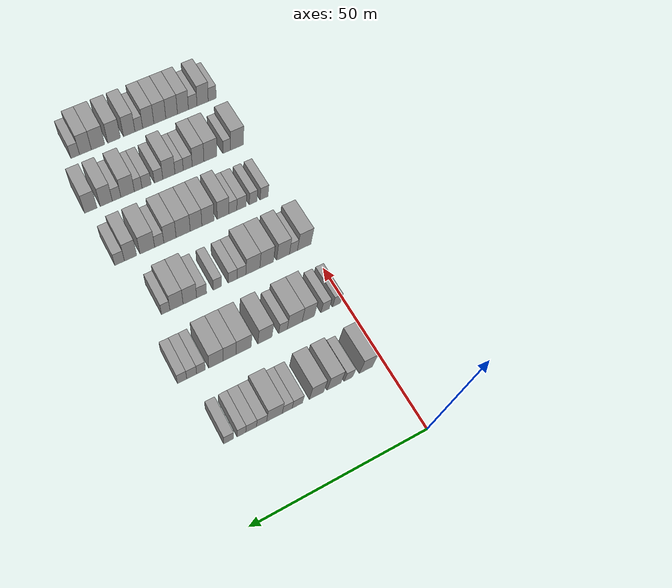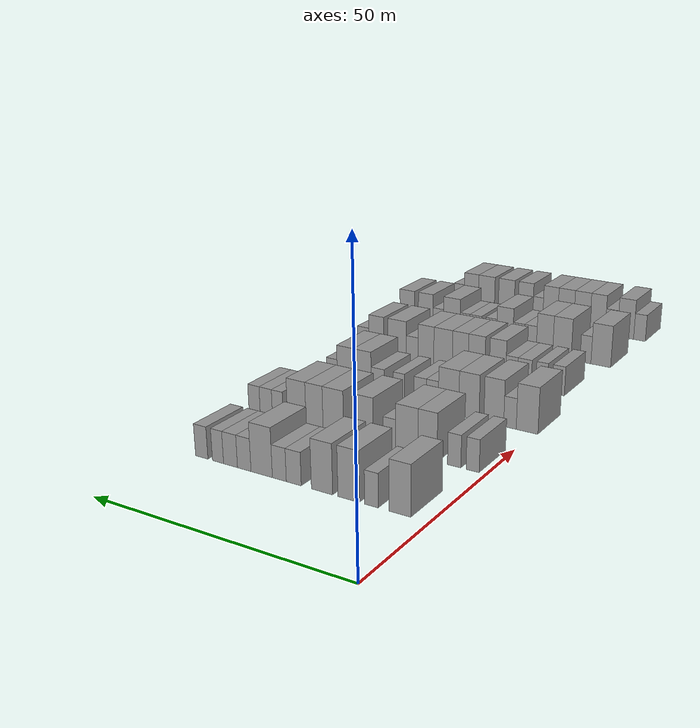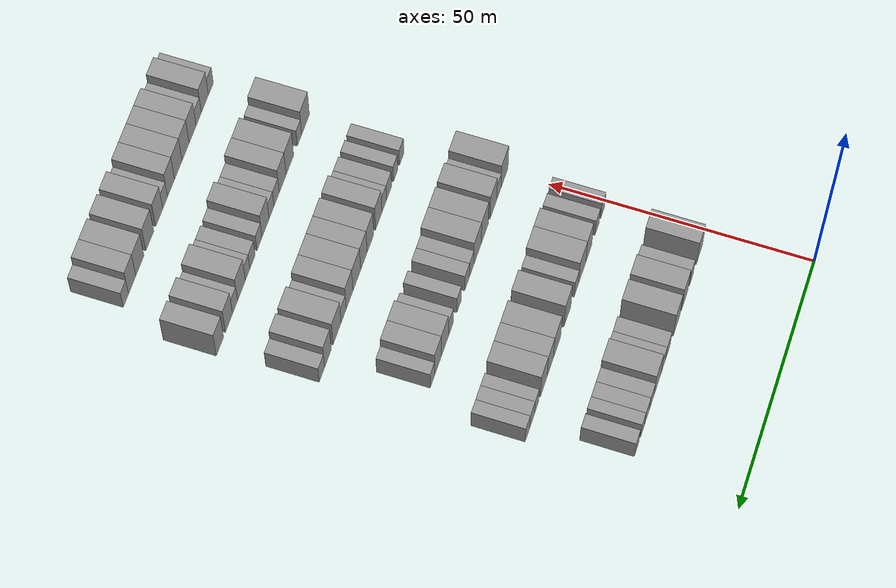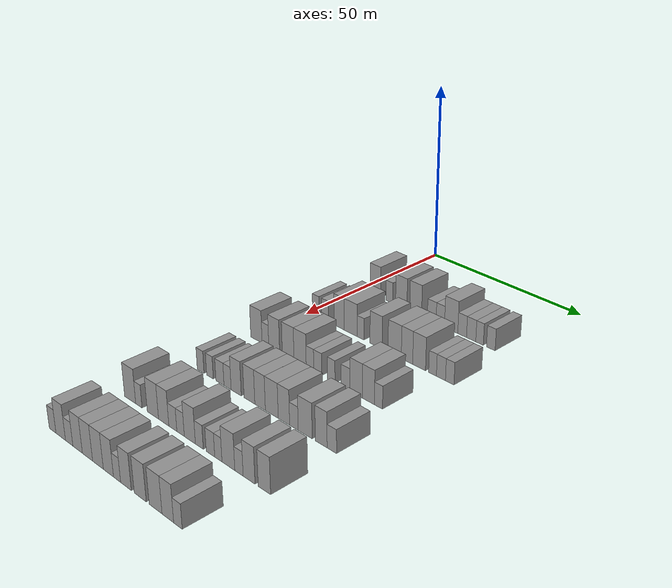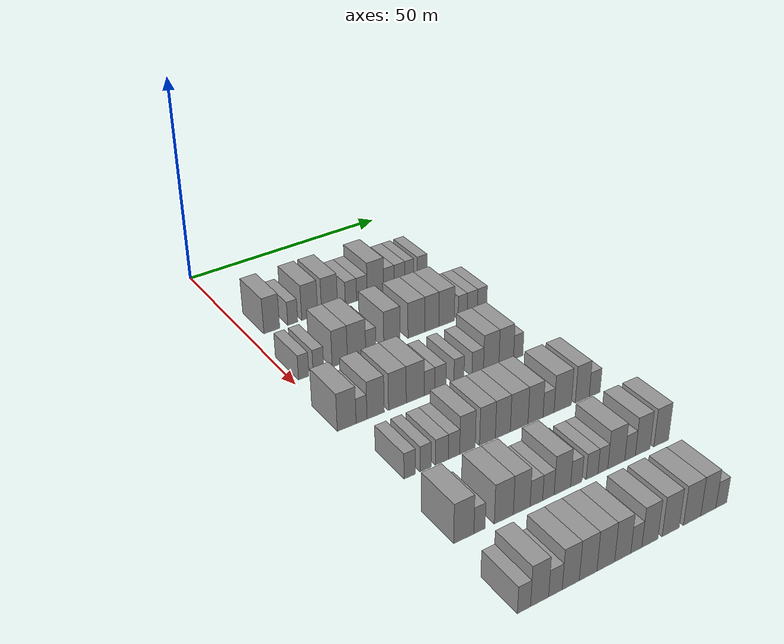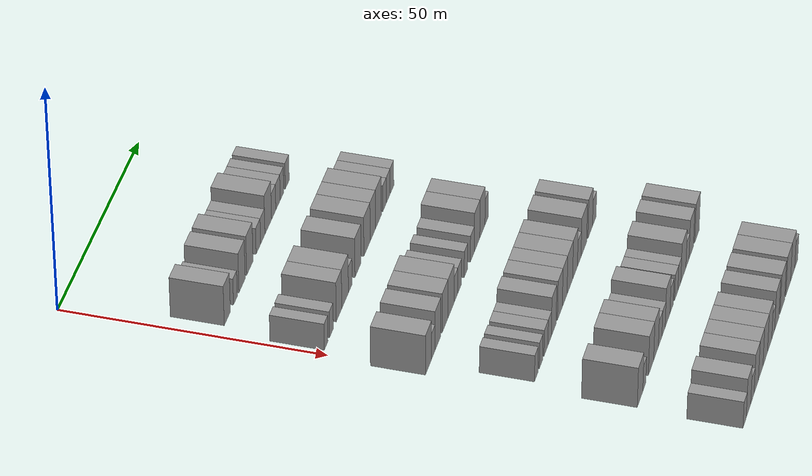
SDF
<sdf version="1.6">
 <world name="default">
  <model name="building_91">
   <static>1</static>
   <pose>25.0000 5.2806 0 0.000000 0.000000 0.000000</pose>
   <link name="link">
    <pose>0 0 4.50 0 0 0</pose>
    <collision name="collision"><geometry><box><size>10.0000 3.9030 9.0000</size></box></geometry></collision>
    <visual name="visual">
     <cast_shadows>0</cast_shadows>
     <geometry><box><size>10.0000 3.9030 9.0000</size></box></geometry>
     <material>
      <script>
       <uri>model://grey_wall/materials/scripts</uri>
       <uri>model://grey_wall/materials/textures</uri>
       <name>vrc/grey_wall</name>
      </script>
     </material>
    </visual>
   </link>
  </model>
  <model name="building_92">
   <static>1</static>
   <pose>25.0000 10.4878 0 0.000000 0.000000 0.000000</pose>
   <link name="link">
    <pose>0 0 3.00 0 0 0</pose>
    <collision name="collision"><geometry><box><size>10.0000 2.5113 6.0000</size></box></geometry></collision>
    <visual name="visual">
     <cast_shadows>0</cast_shadows>
     <geometry><box><size>10.0000 2.5113 6.0000</size></box></geometry>
     <material>
      <script>
       <uri>model://grey_wall/materials/scripts</uri>
       <uri>model://grey_wall/materials/textures</uri>
       <name>vrc/grey_wall</name>
      </script>
     </material>
    </visual>
   </link>
  </model>
  <model name="building_93">
   <static>1</static>
   <pose>25.0000 14.7688 0 0.000000 0.000000 0.000000</pose>
   <link name="link">
    <pose>0 0 4.50 0 0 0</pose>
    <collision name="collision"><geometry><box><size>10.0000 4.0507 9.0000</size></box></geometry></collision>
    <visual name="visual">
     <cast_shadows>0</cast_shadows>
     <geometry><box><size>10.0000 4.0507 9.0000</size></box></geometry>
     <material>
      <script>
       <uri>model://grey_wall/materials/scripts</uri>
       <uri>model://grey_wall/materials/textures</uri>
       <name>vrc/grey_wall</name>
      </script>
     </material>
    </visual>
   </link>
  </model>
  <model name="building_94">
   <static>1</static>
   <pose>25.0000 19.8665 0 0.000000 0.000000 0.000000</pose>
   <link name="link">
    <pose>0 0 4.50 0 0 0</pose>
    <collision name="collision"><geometry><box><size>10.0000 4.1447 9.0000</size></box></geometry></collision>
    <visual name="visual">
     <cast_shadows>0</cast_shadows>
     <geometry><box><size>10.0000 4.1447 9.0000</size></box></geometry>
     <material>
      <script>
       <uri>model://grey_wall/materials/scripts</uri>
       <uri>model://grey_wall/materials/textures</uri>
       <name>vrc/grey_wall</name>
      </script>
     </material>
    </visual>
   </link>
  </model>
  <model name="building_95">
   <static>1</static>
   <pose>25.0000 25.4383 0 0.000000 0.000000 0.000000</pose>
   <link name="link">
    <pose>0 0 3.00 0 0 0</pose>
    <collision name="collision"><geometry><box><size>10.0000 2.9990 6.0000</size></box></geometry></collision>
    <visual name="visual">
     <cast_shadows>0</cast_shadows>
     <geometry><box><size>10.0000 2.9990 6.0000</size></box></geometry>
     <material>
      <script>
       <uri>model://grey_wall/materials/scripts</uri>
       <uri>model://grey_wall/materials/textures</uri>
       <name>vrc/grey_wall</name>
      </script>
     </material>
    </visual>
   </link>
  </model>
  <model name="building_96">
   <static>1</static>
   <pose>25.0000 28.3533 0 0.000000 0.000000 0.000000</pose>
   <link name="link">
    <pose>0 0 3.00 0 0 0</pose>
    <collision name="collision"><geometry><box><size>10.0000 2.8310 6.0000</size></box></geometry></collision>
    <visual name="visual">
     <cast_shadows>0</cast_shadows>
     <geometry><box><size>10.0000 2.8310 6.0000</size></box></geometry>
     <material>
      <script>
       <uri>model://grey_wall/materials/scripts</uri>
       <uri>model://grey_wall/materials/textures</uri>
       <name>vrc/grey_wall</name>
      </script>
     </material>
    </visual>
   </link>
  </model>
  <model name="building_97">
   <static>1</static>
   <pose>25.0000 31.9788 0 0.000000 0.000000 0.000000</pose>
   <link name="link">
    <pose>0 0 4.50 0 0 0</pose>
    <collision name="collision"><geometry><box><size>10.0000 4.4200 9.0000</size></box></geometry></collision>
    <visual name="visual">
     <cast_shadows>0</cast_shadows>
     <geometry><box><size>10.0000 4.4200 9.0000</size></box></geometry>
     <material>
      <script>
       <uri>model://grey_wall/materials/scripts</uri>
       <uri>model://grey_wall/materials/textures</uri>
       <name>vrc/grey_wall</name>
      </script>
     </material>
    </visual>
   </link>
  </model>
  <model name="building_98">
   <static>1</static>
   <pose>25.0000 35.6178 0 0.000000 0.000000 0.000000</pose>
   <link name="link">
    <pose>0 0 3.00 0 0 0</pose>
    <collision name="collision"><geometry><box><size>10.0000 2.8580 6.0000</size></box></geometry></collision>
    <visual name="visual">
     <cast_shadows>0</cast_shadows>
     <geometry><box><size>10.0000 2.8580 6.0000</size></box></geometry>
     <material>
      <script>
       <uri>model://grey_wall/materials/scripts</uri>
       <uri>model://grey_wall/materials/textures</uri>
       <name>vrc/grey_wall</name>
      </script>
     </material>
    </visual>
   </link>
  </model>
  <model name="building_99">
   <static>1</static>
   <pose>25.0000 38.5380 0 0.000000 0.000000 0.000000</pose>
   <link name="link">
    <pose>0 0 3.00 0 0 0</pose>
    <collision name="collision"><geometry><box><size>10.0000 2.9825 6.0000</size></box></geometry></collision>
    <visual name="visual">
     <cast_shadows>0</cast_shadows>
     <geometry><box><size>10.0000 2.9825 6.0000</size></box></geometry>
     <material>
      <script>
       <uri>model://grey_wall/materials/scripts</uri>
       <uri>model://grey_wall/materials/textures</uri>
       <name>vrc/grey_wall</name>
      </script>
     </material>
    </visual>
   </link>
  </model>
  <model name="building_100">
   <static>1</static>
   <pose>25.0000 41.2293 0 0.000000 0.000000 0.000000</pose>
   <link name="link">
    <pose>0 0 3.00 0 0 0</pose>
    <collision name="collision"><geometry><box><size>10.0000 2.4000 6.0000</size></box></geometry></collision>
    <visual name="visual">
     <cast_shadows>0</cast_shadows>
     <geometry><box><size>10.0000 2.4000 6.0000</size></box></geometry>
     <material>
      <script>
       <uri>model://grey_wall/materials/scripts</uri>
       <uri>model://grey_wall/materials/textures</uri>
       <name>vrc/grey_wall</name>
      </script>
     </material>
    </visual>
   </link>
  </model>
  <model name="building_101">
   <static>1</static>
   <pose>25.0000 44.7892 0 0.000000 0.000000 0.000000</pose>
   <link name="link">
    <pose>0 0 3.00 0 0 0</pose>
    <collision name="collision"><geometry><box><size>10.0000 2.7198 6.0000</size></box></geometry></collision>
    <visual name="visual">
     <cast_shadows>0</cast_shadows>
     <geometry><box><size>10.0000 2.7198 6.0000</size></box></geometry>
     <material>
      <script>
       <uri>model://grey_wall/materials/scripts</uri>
       <uri>model://grey_wall/materials/textures</uri>
       <name>vrc/grey_wall</name>
      </script>
     </material>
    </visual>
   </link>
  </model>
  <model name="building_263">
   <static>1</static>
   <pose>44.0000 2.5183 0 0.000000 0.000000 0.000000</pose>
   <link name="link">
    <pose>0 0 3.00 0 0 0</pose>
    <collision name="collision"><geometry><box><size>10.0000 2.4558 6.0000</size></box></geometry></collision>
    <visual name="visual">
     <cast_shadows>0</cast_shadows>
     <geometry><box><size>10.0000 2.4558 6.0000</size></box></geometry>
     <material>
      <script>
       <uri>model://grey_wall/materials/scripts</uri>
       <uri>model://grey_wall/materials/textures</uri>
       <name>vrc/grey_wall</name>
      </script>
     </material>
    </visual>
   </link>
  </model>
  <model name="building_264">
   <static>1</static>
   <pose>44.0000 6.0266 0 0.000000 0.000000 0.000000</pose>
   <link name="link">
    <pose>0 0 3.00 0 0 0</pose>
    <collision name="collision"><geometry><box><size>10.0000 2.5607 6.0000</size></box></geometry></collision>
    <visual name="visual">
     <cast_shadows>0</cast_shadows>
     <geometry><box><size>10.0000 2.5607 6.0000</size></box></geometry>
     <material>
      <script>
       <uri>model://grey_wall/materials/scripts</uri>
       <uri>model://grey_wall/materials/textures</uri>
       <name>vrc/grey_wall</name>
      </script>
     </material>
    </visual>
   </link>
  </model>
  <model name="building_265">
   <static>1</static>
   <pose>44.0000 11.1810 0 0.000000 0.000000 0.000000</pose>
   <link name="link">
    <pose>0 0 4.50 0 0 0</pose>
    <collision name="collision"><geometry><box><size>10.0000 3.7481 9.0000</size></box></geometry></collision>
    <visual name="visual">
     <cast_shadows>0</cast_shadows>
     <geometry><box><size>10.0000 3.7481 9.0000</size></box></geometry>
     <material>
      <script>
       <uri>model://grey_wall/materials/scripts</uri>
       <uri>model://grey_wall/materials/textures</uri>
       <name>vrc/grey_wall</name>
      </script>
     </material>
    </visual>
   </link>
  </model>
  <model name="building_266">
   <static>1</static>
   <pose>44.0000 15.3042 0 0.000000 0.000000 0.000000</pose>
   <link name="link">
    <pose>0 0 4.50 0 0 0</pose>
    <collision name="collision"><geometry><box><size>10.0000 4.4983 9.0000</size></box></geometry></collision>
    <visual name="visual">
     <cast_shadows>0</cast_shadows>
     <geometry><box><size>10.0000 4.4983 9.0000</size></box></geometry>
     <material>
      <script>
       <uri>model://grey_wall/materials/scripts</uri>
       <uri>model://grey_wall/materials/textures</uri>
       <name>vrc/grey_wall</name>
      </script>
     </material>
    </visual>
   </link>
  </model>
  <model name="building_267">
   <static>1</static>
   <pose>44.0000 18.8247 0 0.000000 0.000000 0.000000</pose>
   <link name="link">
    <pose>0 0 3.00 0 0 0</pose>
    <collision name="collision"><geometry><box><size>10.0000 2.5428 6.0000</size></box></geometry></collision>
    <visual name="visual">
     <cast_shadows>0</cast_shadows>
     <geometry><box><size>10.0000 2.5428 6.0000</size></box></geometry>
     <material>
      <script>
       <uri>model://grey_wall/materials/scripts</uri>
       <uri>model://grey_wall/materials/textures</uri>
       <name>vrc/grey_wall</name>
      </script>
     </material>
    </visual>
   </link>
  </model>
  <model name="building_268">
   <static>1</static>
   <pose>44.0000 24.1879 0 0.000000 0.000000 0.000000</pose>
   <link name="link">
    <pose>0 0 4.50 0 0 0</pose>
    <collision name="collision"><geometry><box><size>10.0000 4.1836 9.0000</size></box></geometry></collision>
    <visual name="visual">
     <cast_shadows>0</cast_shadows>
     <geometry><box><size>10.0000 4.1836 9.0000</size></box></geometry>
     <material>
      <script>
       <uri>model://grey_wall/materials/scripts</uri>
       <uri>model://grey_wall/materials/textures</uri>
       <name>vrc/grey_wall</name>
      </script>
     </material>
    </visual>
   </link>
  </model>
  <model name="building_269">
   <static>1</static>
   <pose>44.0000 30.4868 0 0.000000 0.000000 0.000000</pose>
   <link name="link">
    <pose>0 0 4.50 0 0 0</pose>
    <collision name="collision"><geometry><box><size>10.0000 4.4141 9.0000</size></box></geometry></collision>
    <visual name="visual">
     <cast_shadows>0</cast_shadows>
     <geometry><box><size>10.0000 4.4141 9.0000</size></box></geometry>
     <material>
      <script>
       <uri>model://grey_wall/materials/scripts</uri>
       <uri>model://grey_wall/materials/textures</uri>
       <name>vrc/grey_wall</name>
      </script>
     </material>
    </visual>
   </link>
  </model>
  <model name="building_270">
   <static>1</static>
   <pose>44.0000 34.5573 0 0.000000 0.000000 0.000000</pose>
   <link name="link">
    <pose>0 0 4.50 0 0 0</pose>
    <collision name="collision"><geometry><box><size>10.0000 3.7269 9.0000</size></box></geometry></collision>
    <visual name="visual">
     <cast_shadows>0</cast_shadows>
     <geometry><box><size>10.0000 3.7269 9.0000</size></box></geometry>
     <material>
      <script>
       <uri>model://grey_wall/materials/scripts</uri>
       <uri>model://grey_wall/materials/textures</uri>
       <name>vrc/grey_wall</name>
      </script>
     </material>
    </visual>
   </link>
  </model>
  <model name="building_271">
   <static>1</static>
   <pose>44.0000 38.4824 0 0.000000 0.000000 0.000000</pose>
   <link name="link">
    <pose>0 0 4.50 0 0 0</pose>
    <collision name="collision"><geometry><box><size>10.0000 4.1233 9.0000</size></box></geometry></collision>
    <visual name="visual">
     <cast_shadows>0</cast_shadows>
     <geometry><box><size>10.0000 4.1233 9.0000</size></box></geometry>
     <material>
      <script>
       <uri>model://grey_wall/materials/scripts</uri>
       <uri>model://grey_wall/materials/textures</uri>
       <name>vrc/grey_wall</name>
      </script>
     </material>
    </visual>
   </link>
  </model>
  <model name="building_272">
   <static>1</static>
   <pose>44.0000 42.7701 0 0.000000 0.000000 0.000000</pose>
   <link name="link">
    <pose>0 0 3.00 0 0 0</pose>
    <collision name="collision"><geometry><box><size>10.0000 2.4521 6.0000</size></box></geometry></collision>
    <visual name="visual">
     <cast_shadows>0</cast_shadows>
     <geometry><box><size>10.0000 2.4521 6.0000</size></box></geometry>
     <material>
      <script>
       <uri>model://grey_wall/materials/scripts</uri>
       <uri>model://grey_wall/materials/textures</uri>
       <name>vrc/grey_wall</name>
      </script>
     </material>
    </visual>
   </link>
  </model>
  <model name="building_273">
   <static>1</static>
   <pose>44.0000 45.4004 0 0.000000 0.000000 0.000000</pose>
   <link name="link">
    <pose>0 0 3.00 0 0 0</pose>
    <collision name="collision"><geometry><box><size>10.0000 2.8085 6.0000</size></box></geometry></collision>
    <visual name="visual">
     <cast_shadows>0</cast_shadows>
     <geometry><box><size>10.0000 2.8085 6.0000</size></box></geometry>
     <material>
      <script>
       <uri>model://grey_wall/materials/scripts</uri>
       <uri>model://grey_wall/materials/textures</uri>
       <name>vrc/grey_wall</name>
      </script>
     </material>
    </visual>
   </link>
  </model>
  <model name="building_274">
   <static>1</static>
   <pose>44.0000 48.1123 0 0.000000 0.000000 0.000000</pose>
   <link name="link">
    <pose>0 0 3.00 0 0 0</pose>
    <collision name="collision"><geometry><box><size>10.0000 2.6153 6.0000</size></box></geometry></collision>
    <visual name="visual">
     <cast_shadows>0</cast_shadows>
     <geometry><box><size>10.0000 2.6153 6.0000</size></box></geometry>
     <material>
      <script>
       <uri>model://grey_wall/materials/scripts</uri>
       <uri>model://grey_wall/materials/textures</uri>
       <name>vrc/grey_wall</name>
      </script>
     </material>
    </visual>
   </link>
  </model>
  <model name="building_439">
   <static>1</static>
   <pose>63.0000 1.3851 0 0.000000 0.000000 0.000000</pose>
   <link name="link">
    <pose>0 0 4.50 0 0 0</pose>
    <collision name="collision"><geometry><box><size>10.0000 4.2881 9.0000</size></box></geometry></collision>
    <visual name="visual">
     <cast_shadows>0</cast_shadows>
     <geometry><box><size>10.0000 4.2881 9.0000</size></box></geometry>
     <material>
      <script>
       <uri>model://grey_wall/materials/scripts</uri>
       <uri>model://grey_wall/materials/textures</uri>
       <name>vrc/grey_wall</name>
      </script>
     </material>
    </visual>
   </link>
  </model>
  <model name="building_440">
   <static>1</static>
   <pose>63.0000 4.7868 0 0.000000 0.000000 0.000000</pose>
   <link name="link">
    <pose>0 0 3.00 0 0 0</pose>
    <collision name="collision"><geometry><box><size>10.0000 2.5152 6.0000</size></box></geometry></collision>
    <visual name="visual">
     <cast_shadows>0</cast_shadows>
     <geometry><box><size>10.0000 2.5152 6.0000</size></box></geometry>
     <material>
      <script>
       <uri>model://grey_wall/materials/scripts</uri>
       <uri>model://grey_wall/materials/textures</uri>
       <name>vrc/grey_wall</name>
      </script>
     </material>
    </visual>
   </link>
  </model>
  <model name="building_441">
   <static>1</static>
   <pose>63.0000 8.0579 0 0.000000 0.000000 0.000000</pose>
   <link name="link">
    <pose>0 0 4.50 0 0 0</pose>
    <collision name="collision"><geometry><box><size>10.0000 4.0271 9.0000</size></box></geometry></collision>
    <visual name="visual">
     <cast_shadows>0</cast_shadows>
     <geometry><box><size>10.0000 4.0271 9.0000</size></box></geometry>
     <material>
      <script>
       <uri>model://grey_wall/materials/scripts</uri>
       <uri>model://grey_wall/materials/textures</uri>
       <name>vrc/grey_wall</name>
      </script>
     </material>
    </visual>
   </link>
  </model>
  <model name="building_442">
   <static>1</static>
   <pose>63.0000 13.1816 0 0.000000 0.000000 0.000000</pose>
   <link name="link">
    <pose>0 0 4.50 0 0 0</pose>
    <collision name="collision"><geometry><box><size>10.0000 4.2204 9.0000</size></box></geometry></collision>
    <visual name="visual">
     <cast_shadows>0</cast_shadows>
     <geometry><box><size>10.0000 4.2204 9.0000</size></box></geometry>
     <material>
      <script>
       <uri>model://grey_wall/materials/scripts</uri>
       <uri>model://grey_wall/materials/textures</uri>
       <name>vrc/grey_wall</name>
      </script>
     </material>
    </visual>
   </link>
  </model>
  <model name="building_443">
   <static>1</static>
   <pose>63.0000 17.4598 0 0.000000 0.000000 0.000000</pose>
   <link name="link">
    <pose>0 0 4.50 0 0 0</pose>
    <collision name="collision"><geometry><box><size>10.0000 4.3359 9.0000</size></box></geometry></collision>
    <visual name="visual">
     <cast_shadows>0</cast_shadows>
     <geometry><box><size>10.0000 4.3359 9.0000</size></box></geometry>
     <material>
      <script>
       <uri>model://grey_wall/materials/scripts</uri>
       <uri>model://grey_wall/materials/textures</uri>
       <name>vrc/grey_wall</name>
      </script>
     </material>
    </visual>
   </link>
  </model>
  <model name="building_444">
   <static>1</static>
   <pose>63.0000 20.9447 0 0.000000 0.000000 0.000000</pose>
   <link name="link">
    <pose>0 0 3.00 0 0 0</pose>
    <collision name="collision"><geometry><box><size>10.0000 2.6339 6.0000</size></box></geometry></collision>
    <visual name="visual">
     <cast_shadows>0</cast_shadows>
     <geometry><box><size>10.0000 2.6339 6.0000</size></box></geometry>
     <material>
      <script>
       <uri>model://grey_wall/materials/scripts</uri>
       <uri>model://grey_wall/materials/textures</uri>
       <name>vrc/grey_wall</name>
      </script>
     </material>
    </visual>
   </link>
  </model>
  <model name="building_445">
   <static>1</static>
   <pose>63.0000 23.6204 0 0.000000 0.000000 0.000000</pose>
   <link name="link">
    <pose>0 0 3.00 0 0 0</pose>
    <collision name="collision"><geometry><box><size>10.0000 2.7175 6.0000</size></box></geometry></collision>
    <visual name="visual">
     <cast_shadows>0</cast_shadows>
     <geometry><box><size>10.0000 2.7175 6.0000</size></box></geometry>
     <material>
      <script>
       <uri>model://grey_wall/materials/scripts</uri>
       <uri>model://grey_wall/materials/textures</uri>
       <name>vrc/grey_wall</name>
      </script>
     </material>
    </visual>
   </link>
  </model>
  <model name="building_446">
   <static>1</static>
   <pose>63.0000 28.2461 0 0.000000 0.000000 0.000000</pose>
   <link name="link">
    <pose>0 0 3.00 0 0 0</pose>
    <collision name="collision"><geometry><box><size>10.0000 2.5341 6.0000</size></box></geometry></collision>
    <visual name="visual">
     <cast_shadows>0</cast_shadows>
     <geometry><box><size>10.0000 2.5341 6.0000</size></box></geometry>
     <material>
      <script>
       <uri>model://grey_wall/materials/scripts</uri>
       <uri>model://grey_wall/materials/textures</uri>
       <name>vrc/grey_wall</name>
      </script>
     </material>
    </visual>
   </link>
  </model>
  <model name="building_447">
   <static>1</static>
   <pose>63.0000 33.0013 0 0.000000 0.000000 0.000000</pose>
   <link name="link">
    <pose>0 0 3.00 0 0 0</pose>
    <collision name="collision"><geometry><box><size>10.0000 2.9763 6.0000</size></box></geometry></collision>
    <visual name="visual">
     <cast_shadows>0</cast_shadows>
     <geometry><box><size>10.0000 2.9763 6.0000</size></box></geometry>
     <material>
      <script>
       <uri>model://grey_wall/materials/scripts</uri>
       <uri>model://grey_wall/materials/textures</uri>
       <name>vrc/grey_wall</name>
      </script>
     </material>
    </visual>
   </link>
  </model>
  <model name="building_448">
   <static>1</static>
   <pose>63.0000 36.4884 0 0.000000 0.000000 0.000000</pose>
   <link name="link">
    <pose>0 0 4.50 0 0 0</pose>
    <collision name="collision"><geometry><box><size>10.0000 3.9978 9.0000</size></box></geometry></collision>
    <visual name="visual">
     <cast_shadows>0</cast_shadows>
     <geometry><box><size>10.0000 3.9978 9.0000</size></box></geometry>
     <material>
      <script>
       <uri>model://grey_wall/materials/scripts</uri>
       <uri>model://grey_wall/materials/textures</uri>
       <name>vrc/grey_wall</name>
      </script>
     </material>
    </visual>
   </link>
  </model>
  <model name="building_449">
   <static>1</static>
   <pose>63.0000 40.4188 0 0.000000 0.000000 0.000000</pose>
   <link name="link">
    <pose>0 0 4.50 0 0 0</pose>
    <collision name="collision"><geometry><box><size>10.0000 3.8631 9.0000</size></box></geometry></collision>
    <visual name="visual">
     <cast_shadows>0</cast_shadows>
     <geometry><box><size>10.0000 3.8631 9.0000</size></box></geometry>
     <material>
      <script>
       <uri>model://grey_wall/materials/scripts</uri>
       <uri>model://grey_wall/materials/textures</uri>
       <name>vrc/grey_wall</name>
      </script>
     </material>
    </visual>
   </link>
  </model>
  <model name="building_450">
   <static>1</static>
   <pose>63.0000 43.5991 0 0.000000 0.000000 0.000000</pose>
   <link name="link">
    <pose>0 0 3.00 0 0 0</pose>
    <collision name="collision"><geometry><box><size>10.0000 2.4974 6.0000</size></box></geometry></collision>
    <visual name="visual">
     <cast_shadows>0</cast_shadows>
     <geometry><box><size>10.0000 2.4974 6.0000</size></box></geometry>
     <material>
      <script>
       <uri>model://grey_wall/materials/scripts</uri>
       <uri>model://grey_wall/materials/textures</uri>
       <name>vrc/grey_wall</name>
      </script>
     </material>
    </visual>
   </link>
  </model>
  <model name="building_610">
   <static>1</static>
   <pose>82.0000 3.5471 0 0.000000 0.000000 0.000000</pose>
   <link name="link">
    <pose>0 0 3.00 0 0 0</pose>
    <collision name="collision"><geometry><box><size>10.0000 2.5777 6.0000</size></box></geometry></collision>
    <visual name="visual">
     <cast_shadows>0</cast_shadows>
     <geometry><box><size>10.0000 2.5777 6.0000</size></box></geometry>
     <material>
      <script>
       <uri>model://grey_wall/materials/scripts</uri>
       <uri>model://grey_wall/materials/textures</uri>
       <name>vrc/grey_wall</name>
      </script>
     </material>
    </visual>
   </link>
  </model>
  <model name="building_611">
   <static>1</static>
   <pose>82.0000 7.0782 0 0.000000 0.000000 0.000000</pose>
   <link name="link">
    <pose>0 0 3.00 0 0 0</pose>
    <collision name="collision"><geometry><box><size>10.0000 2.4844 6.0000</size></box></geometry></collision>
    <visual name="visual">
     <cast_shadows>0</cast_shadows>
     <geometry><box><size>10.0000 2.4844 6.0000</size></box></geometry>
     <material>
      <script>
       <uri>model://grey_wall/materials/scripts</uri>
       <uri>model://grey_wall/materials/textures</uri>
       <name>vrc/grey_wall</name>
      </script>
     </material>
    </visual>
   </link>
  </model>
  <model name="building_612">
   <static>1</static>
   <pose>82.0000 10.8094 0 0.000000 0.000000 0.000000</pose>
   <link name="link">
    <pose>0 0 3.00 0 0 0</pose>
    <collision name="collision"><geometry><box><size>10.0000 2.9780 6.0000</size></box></geometry></collision>
    <visual name="visual">
     <cast_shadows>0</cast_shadows>
     <geometry><box><size>10.0000 2.9780 6.0000</size></box></geometry>
     <material>
      <script>
       <uri>model://grey_wall/materials/scripts</uri>
       <uri>model://grey_wall/materials/textures</uri>
       <name>vrc/grey_wall</name>
      </script>
     </material>
    </visual>
   </link>
  </model>
  <model name="building_613">
   <static>1</static>
   <pose>82.0000 13.5994 0 0.000000 0.000000 0.000000</pose>
   <link name="link">
    <pose>0 0 3.00 0 0 0</pose>
    <collision name="collision"><geometry><box><size>10.0000 2.6020 6.0000</size></box></geometry></collision>
    <visual name="visual">
     <cast_shadows>0</cast_shadows>
     <geometry><box><size>10.0000 2.6020 6.0000</size></box></geometry>
     <material>
      <script>
       <uri>model://grey_wall/materials/scripts</uri>
       <uri>model://grey_wall/materials/textures</uri>
       <name>vrc/grey_wall</name>
      </script>
     </material>
    </visual>
   </link>
  </model>
  <model name="building_614">
   <static>1</static>
   <pose>82.0000 16.7196 0 0.000000 0.000000 0.000000</pose>
   <link name="link">
    <pose>0 0 4.50 0 0 0</pose>
    <collision name="collision"><geometry><box><size>10.0000 3.6383 9.0000</size></box></geometry></collision>
    <visual name="visual">
     <cast_shadows>0</cast_shadows>
     <geometry><box><size>10.0000 3.6383 9.0000</size></box></geometry>
     <material>
      <script>
       <uri>model://grey_wall/materials/scripts</uri>
       <uri>model://grey_wall/materials/textures</uri>
       <name>vrc/grey_wall</name>
      </script>
     </material>
    </visual>
   </link>
  </model>
  <model name="building_615">
   <static>1</static>
   <pose>82.0000 21.4267 0 0.000000 0.000000 0.000000</pose>
   <link name="link">
    <pose>0 0 4.50 0 0 0</pose>
    <collision name="collision"><geometry><box><size>10.0000 3.7760 9.0000</size></box></geometry></collision>
    <visual name="visual">
     <cast_shadows>0</cast_shadows>
     <geometry><box><size>10.0000 3.7760 9.0000</size></box></geometry>
     <material>
      <script>
       <uri>model://grey_wall/materials/scripts</uri>
       <uri>model://grey_wall/materials/textures</uri>
       <name>vrc/grey_wall</name>
      </script>
     </material>
    </visual>
   </link>
  </model>
  <model name="building_616">
   <static>1</static>
   <pose>82.0000 25.1299 0 0.000000 0.000000 0.000000</pose>
   <link name="link">
    <pose>0 0 4.50 0 0 0</pose>
    <collision name="collision"><geometry><box><size>10.0000 3.6303 9.0000</size></box></geometry></collision>
    <visual name="visual">
     <cast_shadows>0</cast_shadows>
     <geometry><box><size>10.0000 3.6303 9.0000</size></box></geometry>
     <material>
      <script>
       <uri>model://grey_wall/materials/scripts</uri>
       <uri>model://grey_wall/materials/textures</uri>
       <name>vrc/grey_wall</name>
      </script>
     </material>
    </visual>
   </link>
  </model>
  <model name="building_617">
   <static>1</static>
   <pose>82.0000 29.1147 0 0.000000 0.000000 0.000000</pose>
   <link name="link">
    <pose>0 0 4.50 0 0 0</pose>
    <collision name="collision"><geometry><box><size>10.0000 4.3392 9.0000</size></box></geometry></collision>
    <visual name="visual">
     <cast_shadows>0</cast_shadows>
     <geometry><box><size>10.0000 4.3392 9.0000</size></box></geometry>
     <material>
      <script>
       <uri>model://grey_wall/materials/scripts</uri>
       <uri>model://grey_wall/materials/textures</uri>
       <name>vrc/grey_wall</name>
      </script>
     </material>
    </visual>
   </link>
  </model>
  <model name="building_618">
   <static>1</static>
   <pose>82.0000 33.1680 0 0.000000 0.000000 0.000000</pose>
   <link name="link">
    <pose>0 0 4.50 0 0 0</pose>
    <collision name="collision"><geometry><box><size>10.0000 3.7675 9.0000</size></box></geometry></collision>
    <visual name="visual">
     <cast_shadows>0</cast_shadows>
     <geometry><box><size>10.0000 3.7675 9.0000</size></box></geometry>
     <material>
      <script>
       <uri>model://grey_wall/materials/scripts</uri>
       <uri>model://grey_wall/materials/textures</uri>
       <name>vrc/grey_wall</name>
      </script>
     </material>
    </visual>
   </link>
  </model>
  <model name="building_619">
   <static>1</static>
   <pose>82.0000 36.4488 0 0.000000 0.000000 0.000000</pose>
   <link name="link">
    <pose>0 0 3.00 0 0 0</pose>
    <collision name="collision"><geometry><box><size>10.0000 2.7941 6.0000</size></box></geometry></collision>
    <visual name="visual">
     <cast_shadows>0</cast_shadows>
     <geometry><box><size>10.0000 2.7941 6.0000</size></box></geometry>
     <material>
      <script>
       <uri>model://grey_wall/materials/scripts</uri>
       <uri>model://grey_wall/materials/textures</uri>
       <name>vrc/grey_wall</name>
      </script>
     </material>
    </visual>
   </link>
  </model>
  <model name="building_620">
   <static>1</static>
   <pose>82.0000 40.0757 0 0.000000 0.000000 0.000000</pose>
   <link name="link">
    <pose>0 0 4.50 0 0 0</pose>
    <collision name="collision"><geometry><box><size>10.0000 4.4597 9.0000</size></box></geometry></collision>
    <visual name="visual">
     <cast_shadows>0</cast_shadows>
     <geometry><box><size>10.0000 4.4597 9.0000</size></box></geometry>
     <material>
      <script>
       <uri>model://grey_wall/materials/scripts</uri>
       <uri>model://grey_wall/materials/textures</uri>
       <name>vrc/grey_wall</name>
      </script>
     </material>
    </visual>
   </link>
  </model>
  <model name="building_621">
   <static>1</static>
   <pose>82.0000 45.1335 0 0.000000 0.000000 0.000000</pose>
   <link name="link">
    <pose>0 0 4.50 0 0 0</pose>
    <collision name="collision"><geometry><box><size>10.0000 3.6559 9.0000</size></box></geometry></collision>
    <visual name="visual">
     <cast_shadows>0</cast_shadows>
     <geometry><box><size>10.0000 3.6559 9.0000</size></box></geometry>
     <material>
      <script>
       <uri>model://grey_wall/materials/scripts</uri>
       <uri>model://grey_wall/materials/textures</uri>
       <name>vrc/grey_wall</name>
      </script>
     </material>
    </visual>
   </link>
  </model>
  <model name="building_622">
   <static>1</static>
   <pose>82.0000 48.4071 0 0.000000 0.000000 0.000000</pose>
   <link name="link">
    <pose>0 0 3.00 0 0 0</pose>
    <collision name="collision"><geometry><box><size>10.0000 2.8913 6.0000</size></box></geometry></collision>
    <visual name="visual">
     <cast_shadows>0</cast_shadows>
     <geometry><box><size>10.0000 2.8913 6.0000</size></box></geometry>
     <material>
      <script>
       <uri>model://grey_wall/materials/scripts</uri>
       <uri>model://grey_wall/materials/textures</uri>
       <name>vrc/grey_wall</name>
      </script>
     </material>
    </visual>
   </link>
  </model>
  <model name="building_784">
   <static>1</static>
   <pose>101.0000 2.2348 0 0.000000 0.000000 0.000000</pose>
   <link name="link">
    <pose>0 0 4.50 0 0 0</pose>
    <collision name="collision"><geometry><box><size>10.0000 4.3402 9.0000</size></box></geometry></collision>
    <visual name="visual">
     <cast_shadows>0</cast_shadows>
     <geometry><box><size>10.0000 4.3402 9.0000</size></box></geometry>
     <material>
      <script>
       <uri>model://grey_wall/materials/scripts</uri>
       <uri>model://grey_wall/materials/textures</uri>
       <name>vrc/grey_wall</name>
      </script>
     </material>
    </visual>
   </link>
  </model>
  <model name="building_785">
   <static>1</static>
   <pose>101.0000 5.6258 0 0.000000 0.000000 0.000000</pose>
   <link name="link">
    <pose>0 0 3.00 0 0 0</pose>
    <collision name="collision"><geometry><box><size>10.0000 2.4418 6.0000</size></box></geometry></collision>
    <visual name="visual">
     <cast_shadows>0</cast_shadows>
     <geometry><box><size>10.0000 2.4418 6.0000</size></box></geometry>
     <material>
      <script>
       <uri>model://grey_wall/materials/scripts</uri>
       <uri>model://grey_wall/materials/textures</uri>
       <name>vrc/grey_wall</name>
      </script>
     </material>
    </visual>
   </link>
  </model>
  <model name="building_786">
   <static>1</static>
   <pose>101.0000 10.9584 0 0.000000 0.000000 0.000000</pose>
   <link name="link">
    <pose>0 0 4.50 0 0 0</pose>
    <collision name="collision"><geometry><box><size>10.0000 4.2235 9.0000</size></box></geometry></collision>
    <visual name="visual">
     <cast_shadows>0</cast_shadows>
     <geometry><box><size>10.0000 4.2235 9.0000</size></box></geometry>
     <material>
      <script>
       <uri>model://grey_wall/materials/scripts</uri>
       <uri>model://grey_wall/materials/textures</uri>
       <name>vrc/grey_wall</name>
      </script>
     </material>
    </visual>
   </link>
  </model>
  <model name="building_787">
   <static>1</static>
   <pose>101.0000 14.9649 0 0.000000 0.000000 0.000000</pose>
   <link name="link">
    <pose>0 0 4.50 0 0 0</pose>
    <collision name="collision"><geometry><box><size>10.0000 3.7894 9.0000</size></box></geometry></collision>
    <visual name="visual">
     <cast_shadows>0</cast_shadows>
     <geometry><box><size>10.0000 3.7894 9.0000</size></box></geometry>
     <material>
      <script>
       <uri>model://grey_wall/materials/scripts</uri>
       <uri>model://grey_wall/materials/textures</uri>
       <name>vrc/grey_wall</name>
      </script>
     </material>
    </visual>
   </link>
  </model>
  <model name="building_788">
   <static>1</static>
   <pose>101.0000 18.3054 0 0.000000 0.000000 0.000000</pose>
   <link name="link">
    <pose>0 0 3.00 0 0 0</pose>
    <collision name="collision"><geometry><box><size>10.0000 2.8915 6.0000</size></box></geometry></collision>
    <visual name="visual">
     <cast_shadows>0</cast_shadows>
     <geometry><box><size>10.0000 2.8915 6.0000</size></box></geometry>
     <material>
      <script>
       <uri>model://grey_wall/materials/scripts</uri>
       <uri>model://grey_wall/materials/textures</uri>
       <name>vrc/grey_wall</name>
      </script>
     </material>
    </visual>
   </link>
  </model>
  <model name="building_789">
   <static>1</static>
   <pose>101.0000 21.0841 0 0.000000 0.000000 0.000000</pose>
   <link name="link">
    <pose>0 0 3.00 0 0 0</pose>
    <collision name="collision"><geometry><box><size>10.0000 2.6659 6.0000</size></box></geometry></collision>
    <visual name="visual">
     <cast_shadows>0</cast_shadows>
     <geometry><box><size>10.0000 2.6659 6.0000</size></box></geometry>
     <material>
      <script>
       <uri>model://grey_wall/materials/scripts</uri>
       <uri>model://grey_wall/materials/textures</uri>
       <name>vrc/grey_wall</name>
      </script>
     </material>
    </visual>
   </link>
  </model>
  <model name="building_790">
   <static>1</static>
   <pose>101.0000 24.3569 0 0.000000 0.000000 0.000000</pose>
   <link name="link">
    <pose>0 0 4.50 0 0 0</pose>
    <collision name="collision"><geometry><box><size>10.0000 3.8796 9.0000</size></box></geometry></collision>
    <visual name="visual">
     <cast_shadows>0</cast_shadows>
     <geometry><box><size>10.0000 3.8796 9.0000</size></box></geometry>
     <material>
      <script>
       <uri>model://grey_wall/materials/scripts</uri>
       <uri>model://grey_wall/materials/textures</uri>
       <name>vrc/grey_wall</name>
      </script>
     </material>
    </visual>
   </link>
  </model>
  <model name="building_791">
   <static>1</static>
   <pose>101.0000 27.6531 0 0.000000 0.000000 0.000000</pose>
   <link name="link">
    <pose>0 0 3.00 0 0 0</pose>
    <collision name="collision"><geometry><box><size>10.0000 2.7127 6.0000</size></box></geometry></collision>
    <visual name="visual">
     <cast_shadows>0</cast_shadows>
     <geometry><box><size>10.0000 2.7127 6.0000</size></box></geometry>
     <material>
      <script>
       <uri>model://grey_wall/materials/scripts</uri>
       <uri>model://grey_wall/materials/textures</uri>
       <name>vrc/grey_wall</name>
      </script>
     </material>
    </visual>
   </link>
  </model>
  <model name="building_792">
   <static>1</static>
   <pose>101.0000 31.4449 0 0.000000 0.000000 0.000000</pose>
   <link name="link">
    <pose>0 0 3.00 0 0 0</pose>
    <collision name="collision"><geometry><box><size>10.0000 2.8708 6.0000</size></box></geometry></collision>
    <visual name="visual">
     <cast_shadows>0</cast_shadows>
     <geometry><box><size>10.0000 2.8708 6.0000</size></box></geometry>
     <material>
      <script>
       <uri>model://grey_wall/materials/scripts</uri>
       <uri>model://grey_wall/materials/textures</uri>
       <name>vrc/grey_wall</name>
      </script>
     </material>
    </visual>
   </link>
  </model>
  <model name="building_793">
   <static>1</static>
   <pose>101.0000 34.0827 0 0.000000 0.000000 0.000000</pose>
   <link name="link">
    <pose>0 0 3.00 0 0 0</pose>
    <collision name="collision"><geometry><box><size>10.0000 2.4048 6.0000</size></box></geometry></collision>
    <visual name="visual">
     <cast_shadows>0</cast_shadows>
     <geometry><box><size>10.0000 2.4048 6.0000</size></box></geometry>
     <material>
      <script>
       <uri>model://grey_wall/materials/scripts</uri>
       <uri>model://grey_wall/materials/textures</uri>
       <name>vrc/grey_wall</name>
      </script>
     </material>
    </visual>
   </link>
  </model>
  <model name="building_794">
   <static>1</static>
   <pose>101.0000 37.3878 0 0.000000 0.000000 0.000000</pose>
   <link name="link">
    <pose>0 0 4.50 0 0 0</pose>
    <collision name="collision"><geometry><box><size>10.0000 4.2054 9.0000</size></box></geometry></collision>
    <visual name="visual">
     <cast_shadows>0</cast_shadows>
     <geometry><box><size>10.0000 4.2054 9.0000</size></box></geometry>
     <material>
      <script>
       <uri>model://grey_wall/materials/scripts</uri>
       <uri>model://grey_wall/materials/textures</uri>
       <name>vrc/grey_wall</name>
      </script>
     </material>
    </visual>
   </link>
  </model>
  <model name="building_795">
   <static>1</static>
   <pose>101.0000 40.8262 0 0.000000 0.000000 0.000000</pose>
   <link name="link">
    <pose>0 0 3.00 0 0 0</pose>
    <collision name="collision"><geometry><box><size>10.0000 2.6715 6.0000</size></box></geometry></collision>
    <visual name="visual">
     <cast_shadows>0</cast_shadows>
     <geometry><box><size>10.0000 2.6715 6.0000</size></box></geometry>
     <material>
      <script>
       <uri>model://grey_wall/materials/scripts</uri>
       <uri>model://grey_wall/materials/textures</uri>
       <name>vrc/grey_wall</name>
      </script>
     </material>
    </visual>
   </link>
  </model>
  <model name="building_796">
   <static>1</static>
   <pose>101.0000 44.0315 0 0.000000 0.000000 0.000000</pose>
   <link name="link">
    <pose>0 0 4.50 0 0 0</pose>
    <collision name="collision"><geometry><box><size>10.0000 3.7392 9.0000</size></box></geometry></collision>
    <visual name="visual">
     <cast_shadows>0</cast_shadows>
     <geometry><box><size>10.0000 3.7392 9.0000</size></box></geometry>
     <material>
      <script>
       <uri>model://grey_wall/materials/scripts</uri>
       <uri>model://grey_wall/materials/textures</uri>
       <name>vrc/grey_wall</name>
      </script>
     </material>
    </visual>
   </link>
  </model>
  <model name="building_797">
   <static>1</static>
   <pose>101.0000 48.8055 0 0.000000 0.000000 0.000000</pose>
   <link name="link">
    <pose>0 0 4.50 0 0 0</pose>
    <collision name="collision"><geometry><box><size>10.0000 3.8086 9.0000</size></box></geometry></collision>
    <visual name="visual">
     <cast_shadows>0</cast_shadows>
     <geometry><box><size>10.0000 3.8086 9.0000</size></box></geometry>
     <material>
      <script>
       <uri>model://grey_wall/materials/scripts</uri>
       <uri>model://grey_wall/materials/textures</uri>
       <name>vrc/grey_wall</name>
      </script>
     </material>
    </visual>
   </link>
  </model>
  <model name="building_957">
   <static>1</static>
   <pose>120.0000 0.6486 0 0.000000 0.000000 0.000000</pose>
   <link name="link">
    <pose>0 0 3.00 0 0 0</pose>
    <collision name="collision"><geometry><box><size>10.0000 2.6994 6.0000</size></box></geometry></collision>
    <visual name="visual">
     <cast_shadows>0</cast_shadows>
     <geometry><box><size>10.0000 2.6994 6.0000</size></box></geometry>
     <material>
      <script>
       <uri>model://grey_wall/materials/scripts</uri>
       <uri>model://grey_wall/materials/textures</uri>
       <name>vrc/grey_wall</name>
      </script>
     </material>
    </visual>
   </link>
  </model>
  <model name="building_958">
   <static>1</static>
   <pose>120.0000 3.8985 0 0.000000 0.000000 0.000000</pose>
   <link name="link">
    <pose>0 0 4.50 0 0 0</pose>
    <collision name="collision"><geometry><box><size>10.0000 3.8005 9.0000</size></box></geometry></collision>
    <visual name="visual">
     <cast_shadows>0</cast_shadows>
     <geometry><box><size>10.0000 3.8005 9.0000</size></box></geometry>
     <material>
      <script>
       <uri>model://grey_wall/materials/scripts</uri>
       <uri>model://grey_wall/materials/textures</uri>
       <name>vrc/grey_wall</name>
      </script>
     </material>
    </visual>
   </link>
  </model>
  <model name="building_959">
   <static>1</static>
   <pose>120.0000 7.2431 0 0.000000 0.000000 0.000000</pose>
   <link name="link">
    <pose>0 0 3.00 0 0 0</pose>
    <collision name="collision"><geometry><box><size>10.0000 2.8888 6.0000</size></box></geometry></collision>
    <visual name="visual">
     <cast_shadows>0</cast_shadows>
     <geometry><box><size>10.0000 2.8888 6.0000</size></box></geometry>
     <material>
      <script>
       <uri>model://grey_wall/materials/scripts</uri>
       <uri>model://grey_wall/materials/textures</uri>
       <name>vrc/grey_wall</name>
      </script>
     </material>
    </visual>
   </link>
  </model>
  <model name="building_960">
   <static>1</static>
   <pose>120.0000 10.5267 0 0.000000 0.000000 0.000000</pose>
   <link name="link">
    <pose>0 0 4.50 0 0 0</pose>
    <collision name="collision"><geometry><box><size>10.0000 3.6784 9.0000</size></box></geometry></collision>
    <visual name="visual">
     <cast_shadows>0</cast_shadows>
     <geometry><box><size>10.0000 3.6784 9.0000</size></box></geometry>
     <material>
      <script>
       <uri>model://grey_wall/materials/scripts</uri>
       <uri>model://grey_wall/materials/textures</uri>
       <name>vrc/grey_wall</name>
      </script>
     </material>
    </visual>
   </link>
  </model>
  <model name="building_961">
   <static>1</static>
   <pose>120.0000 14.3005 0 0.000000 0.000000 0.000000</pose>
   <link name="link">
    <pose>0 0 4.50 0 0 0</pose>
    <collision name="collision"><geometry><box><size>10.0000 3.8693 9.0000</size></box></geometry></collision>
    <visual name="visual">
     <cast_shadows>0</cast_shadows>
     <geometry><box><size>10.0000 3.8693 9.0000</size></box></geometry>
     <material>
      <script>
       <uri>model://grey_wall/materials/scripts</uri>
       <uri>model://grey_wall/materials/textures</uri>
       <name>vrc/grey_wall</name>
      </script>
     </material>
    </visual>
   </link>
  </model>
  <model name="building_962">
   <static>1</static>
   <pose>120.0000 18.2150 0 0.000000 0.000000 0.000000</pose>
   <link name="link">
    <pose>0 0 4.50 0 0 0</pose>
    <collision name="collision"><geometry><box><size>10.0000 3.9596 9.0000</size></box></geometry></collision>
    <visual name="visual">
     <cast_shadows>0</cast_shadows>
     <geometry><box><size>10.0000 3.9596 9.0000</size></box></geometry>
     <material>
      <script>
       <uri>model://grey_wall/materials/scripts</uri>
       <uri>model://grey_wall/materials/textures</uri>
       <name>vrc/grey_wall</name>
      </script>
     </material>
    </visual>
   </link>
  </model>
  <model name="building_963">
   <static>1</static>
   <pose>120.0000 22.0361 0 0.000000 0.000000 0.000000</pose>
   <link name="link">
    <pose>0 0 4.50 0 0 0</pose>
    <collision name="collision"><geometry><box><size>10.0000 3.6826 9.0000</size></box></geometry></collision>
    <visual name="visual">
     <cast_shadows>0</cast_shadows>
     <geometry><box><size>10.0000 3.6826 9.0000</size></box></geometry>
     <material>
      <script>
       <uri>model://grey_wall/materials/scripts</uri>
       <uri>model://grey_wall/materials/textures</uri>
       <name>vrc/grey_wall</name>
      </script>
     </material>
    </visual>
   </link>
  </model>
  <model name="building_964">
   <static>1</static>
   <pose>120.0000 25.1464 0 0.000000 0.000000 0.000000</pose>
   <link name="link">
    <pose>0 0 3.00 0 0 0</pose>
    <collision name="collision"><geometry><box><size>10.0000 2.5381 6.0000</size></box></geometry></collision>
    <visual name="visual">
     <cast_shadows>0</cast_shadows>
     <geometry><box><size>10.0000 2.5381 6.0000</size></box></geometry>
     <material>
      <script>
       <uri>model://grey_wall/materials/scripts</uri>
       <uri>model://grey_wall/materials/textures</uri>
       <name>vrc/grey_wall</name>
      </script>
     </material>
    </visual>
   </link>
  </model>
  <model name="building_965">
   <static>1</static>
   <pose>120.0000 28.2906 0 0.000000 0.000000 0.000000</pose>
   <link name="link">
    <pose>0 0 4.50 0 0 0</pose>
    <collision name="collision"><geometry><box><size>10.0000 3.7503 9.0000</size></box></geometry></collision>
    <visual name="visual">
     <cast_shadows>0</cast_shadows>
     <geometry><box><size>10.0000 3.7503 9.0000</size></box></geometry>
     <material>
      <script>
       <uri>model://grey_wall/materials/scripts</uri>
       <uri>model://grey_wall/materials/textures</uri>
       <name>vrc/grey_wall</name>
      </script>
     </material>
    </visual>
   </link>
  </model>
  <model name="building_966">
   <static>1</static>
   <pose>120.0000 33.2081 0 0.000000 0.000000 0.000000</pose>
   <link name="link">
    <pose>0 0 4.50 0 0 0</pose>
    <collision name="collision"><geometry><box><size>10.0000 4.0847 9.0000</size></box></geometry></collision>
    <visual name="visual">
     <cast_shadows>0</cast_shadows>
     <geometry><box><size>10.0000 4.0847 9.0000</size></box></geometry>
     <material>
      <script>
       <uri>model://grey_wall/materials/scripts</uri>
       <uri>model://grey_wall/materials/textures</uri>
       <name>vrc/grey_wall</name>
      </script>
     </material>
    </visual>
   </link>
  </model>
  <model name="building_967">
   <static>1</static>
   <pose>120.0000 38.3682 0 0.000000 0.000000 0.000000</pose>
   <link name="link">
    <pose>0 0 4.50 0 0 0</pose>
    <collision name="collision"><geometry><box><size>10.0000 4.2355 9.0000</size></box></geometry></collision>
    <visual name="visual">
     <cast_shadows>0</cast_shadows>
     <geometry><box><size>10.0000 4.2355 9.0000</size></box></geometry>
     <material>
      <script>
       <uri>model://grey_wall/materials/scripts</uri>
       <uri>model://grey_wall/materials/textures</uri>
       <name>vrc/grey_wall</name>
      </script>
     </material>
    </visual>
   </link>
  </model>
  <model name="building_968">
   <static>1</static>
   <pose>120.0000 42.3651 0 0.000000 0.000000 0.000000</pose>
   <link name="link">
    <pose>0 0 4.50 0 0 0</pose>
    <collision name="collision"><geometry><box><size>10.0000 3.7583 9.0000</size></box></geometry></collision>
    <visual name="visual">
     <cast_shadows>0</cast_shadows>
     <geometry><box><size>10.0000 3.7583 9.0000</size></box></geometry>
     <material>
      <script>
       <uri>model://grey_wall/materials/scripts</uri>
       <uri>model://grey_wall/materials/textures</uri>
       <name>vrc/grey_wall</name>
      </script>
     </material>
    </visual>
   </link>
  </model>
  <model name="building_969">
   <static>1</static>
   <pose>120.0000 45.6059 0 0.000000 0.000000 0.000000</pose>
   <link name="link">
    <pose>0 0 3.00 0 0 0</pose>
    <collision name="collision"><geometry><box><size>10.0000 2.7232 6.0000</size></box></geometry></collision>
    <visual name="visual">
     <cast_shadows>0</cast_shadows>
     <geometry><box><size>10.0000 2.7232 6.0000</size></box></geometry>
     <material>
      <script>
       <uri>model://grey_wall/materials/scripts</uri>
       <uri>model://grey_wall/materials/textures</uri>
       <name>vrc/grey_wall</name>
      </script>
     </material>
    </visual>
   </link>
  </model>
 </world>
</sdf>
